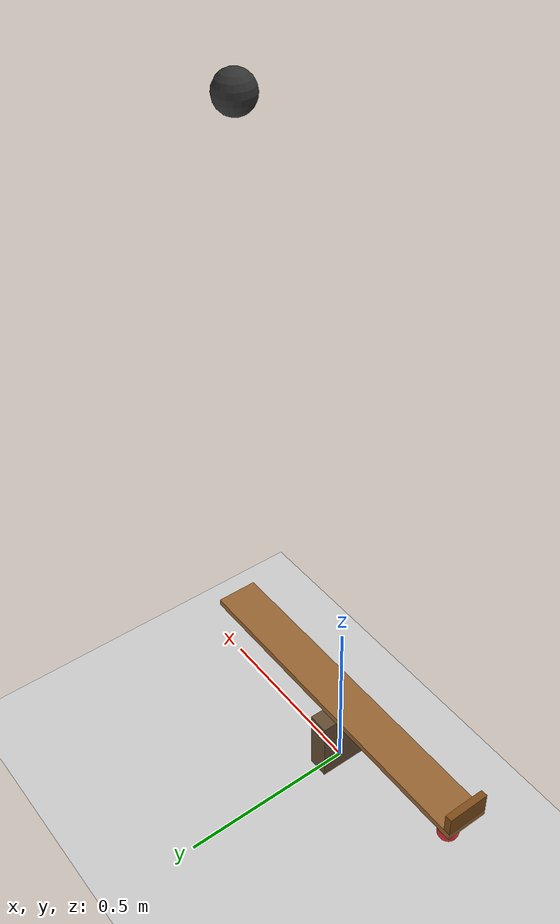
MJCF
<mujoco model="seesaw_catapult">
  <option timestep="0.002" gravity="0 0 -9.81"/>
  <worldbody>
    <light name="sun" pos="0 0 3" dir="0 0 -1"/>
    <geom name="floor" type="plane" size="3 3 0.1" rgba="0.8 0.8 0.8 1"/>
    <body name="base" pos="0 0 0">
      <geom name="base_post" type="box" size="0.03 0.08 0.1" pos="0 0 0.1" contype="0" conaffinity="0" rgba="0.4 0.3 0.2 1"/>
    </body>
    <body name="seesaw" pos="0 0 0.25">
      <joint name="seesaw_hinge" type="hinge" axis="0 1 0" limited="true" range="-17.19 17.19" damping="0"/>
      <geom name="seesaw_plank" type="box" size="0.5 0.06 0.01" mass="0.2" rgba="0.6 0.4 0.2 1"/>
      <geom name="seesaw_lip" type="box" size="0.01 0.06 0.03" pos="-0.49 0 0.04" mass="0.01" rgba="0.5 0.3 0.1 1"/>
    </body>
    <body name="weight" pos="0.38 0 1.8">
      <freejoint/>
      <geom name="weight" type="sphere" size="0.05" mass="1.0" rgba="0.2 0.2 0.2 1"/>
    </body>
    <body name="ball" pos="-0.4417 0 0.156">
      <freejoint/>
      <geom name="ball" type="sphere" size="0.03" mass="0.1" rgba="0.9 0.2 0.2 1"/>
    </body>
  </worldbody>
  <keyframe>
    <key name="start" qpos="-0.299  0.38 0 1.8 1 0 0 0  -0.4417 0 0.156 1 0 0 0"/>
  </keyframe>
</mujoco>
